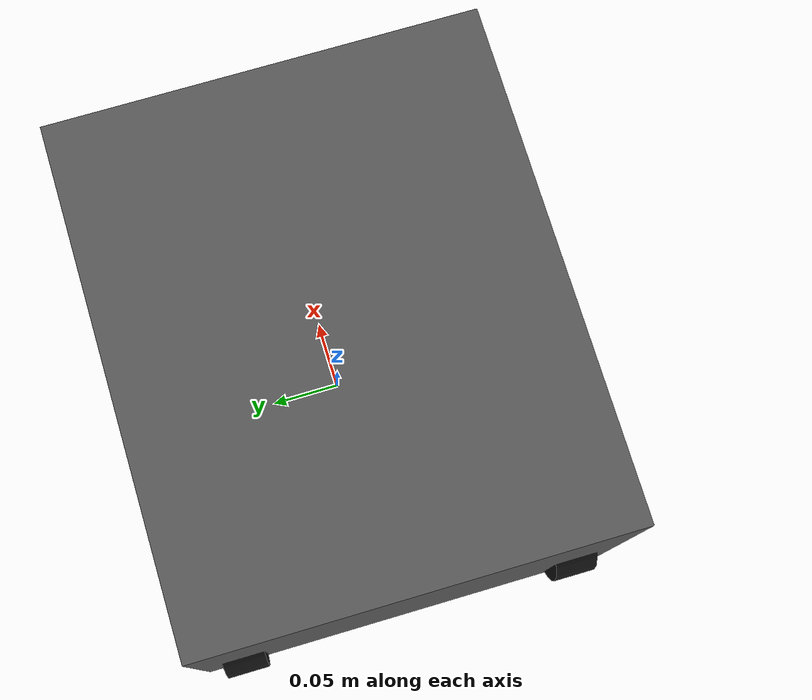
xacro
<?xml version="1.0"?>
<robot xmlns:xacro="http://www.ros.org/wiki/xacro" name="pet_rover">

  <!-- Main body dimensions (meters) -->
  <xacro:property name="base_length" value="0.36"/>
  <xacro:property name="base_width" value="0.30"/>
  <xacro:property name="base_height" value="0.20"/>
  <xacro:property name="base_mass" value="12.0"/>

  <!-- Wheel assumptions for visualization -->
  <xacro:property name="wheel_radius" value="0.05"/>
  <xacro:property name="wheel_width" value="0.03"/>
  <xacro:property name="wheel_mass" value="0.35"/>
  <xacro:property name="wheel_x" value="0.14"/>
  <xacro:property name="wheel_y" value="0.12"/>
  <xacro:property name="wheel_z" value="${-base_height/2.0 + wheel_radius}"/>

  <!-- Core links -->
  <link name="base_footprint"/>

  <link name="base_link">
    <visual>
      <origin xyz="0 0 0" rpy="0 0 0"/>
      <geometry>
        <box size="${base_length} ${base_width} ${base_height}"/>
      </geometry>
      <material name="gray">
        <color rgba="0.35 0.35 0.35 1.0"/>
      </material>
    </visual>
    <collision>
      <origin xyz="0 0 0" rpy="0 0 0"/>
      <geometry>
        <box size="${base_length} ${base_width} ${base_height}"/>
      </geometry>
    </collision>
    <inertial>
      <origin xyz="0 0 0" rpy="0 0 0"/>
      <mass value="${base_mass}"/>
      <inertia
        ixx="${(1.0/12.0) * base_mass * (base_width*base_width + base_height*base_height)}"
        ixy="0.0"
        ixz="0.0"
        iyy="${(1.0/12.0) * base_mass * (base_length*base_length + base_height*base_height)}"
        iyz="0.0"
        izz="${(1.0/12.0) * base_mass * (base_length*base_length + base_width*base_width)}"/>
    </inertial>
  </link>

  <!-- Ground frame to body-center frame -->
  <joint name="base_footprint_to_base_link" type="fixed">
    <parent link="base_footprint"/>
    <child link="base_link"/>
    <origin xyz="0 0 ${base_height/2.0}" rpy="0 0 0"/>
  </joint>

  <!-- Sensor frames (z values relative to base_link center) -->
  <link name="laser"/>
  <joint name="base_link_to_laser" type="fixed">
    <parent link="base_link"/>
    <child link="laser"/>
    <origin xyz="0 0 0.15" rpy="3.14159 0 0"/>
  </joint>

  <link name="camera_link"/>
  <joint name="base_link_to_camera_link" type="fixed">
    <parent link="base_link"/>
    <child link="camera_link"/>
    <origin xyz="0.1 0 0.09" rpy="0 0 0"/>
  </joint>

  <link name="ultrasonic_front_left_link"/>
  <joint name="base_link_to_ultrasonic_front_left" type="fixed">
    <parent link="base_link"/>
    <child link="ultrasonic_front_left_link"/>
    <origin xyz="0.1 0.1 0.02" rpy="0 0 0.3"/>
  </joint>

  <link name="ultrasonic_front_right_link"/>
  <joint name="base_link_to_ultrasonic_front_right" type="fixed">
    <parent link="base_link"/>
    <child link="ultrasonic_front_right_link"/>
    <origin xyz="0.1 -0.1 0.02" rpy="0 0 -0.3"/>
  </joint>

  <link name="ultrasonic_back_center_link"/>
  <joint name="base_link_to_ultrasonic_back_center" type="fixed">
    <parent link="base_link"/>
    <child link="ultrasonic_back_center_link"/>
    <origin xyz="-0.1 0 0.02" rpy="0 0 3.14159"/>
  </joint>

  <!-- Omnidirectional wheel placeholders (visual + inertial + continuous joints) -->
  <link name="wheel_front_left">
    <visual>
      <origin xyz="0 0 0" rpy="1.57079632679 0 0"/>
      <geometry>
        <cylinder radius="${wheel_radius}" length="${wheel_width}"/>
      </geometry>
      <material name="black">
        <color rgba="0.1 0.1 0.1 1.0"/>
      </material>
    </visual>
    <collision>
      <origin xyz="0 0 0" rpy="1.57079632679 0 0"/>
      <geometry>
        <cylinder radius="${wheel_radius}" length="${wheel_width}"/>
      </geometry>
    </collision>
    <inertial>
      <origin xyz="0 0 0" rpy="0 0 0"/>
      <mass value="${wheel_mass}"/>
      <inertia
        ixx="${(1.0/12.0) * wheel_mass * (3*wheel_radius*wheel_radius + wheel_width*wheel_width)}"
        ixy="0.0"
        ixz="0.0"
        iyy="${0.5 * wheel_mass * wheel_radius*wheel_radius}"
        iyz="0.0"
        izz="${(1.0/12.0) * wheel_mass * (3*wheel_radius*wheel_radius + wheel_width*wheel_width)}"/>
    </inertial>
  </link>

  <link name="wheel_front_right">
    <visual>
      <origin xyz="0 0 0" rpy="1.57079632679 0 0"/>
      <geometry><cylinder radius="${wheel_radius}" length="${wheel_width}"/></geometry>
      <material name="black"><color rgba="0.1 0.1 0.1 1.0"/></material>
    </visual>
    <collision>
      <origin xyz="0 0 0" rpy="1.57079632679 0 0"/>
      <geometry><cylinder radius="${wheel_radius}" length="${wheel_width}"/></geometry>
    </collision>
    <inertial>
      <origin xyz="0 0 0" rpy="0 0 0"/>
      <mass value="${wheel_mass}"/>
      <inertia
        ixx="${(1.0/12.0) * wheel_mass * (3*wheel_radius*wheel_radius + wheel_width*wheel_width)}"
        ixy="0.0" ixz="0.0"
        iyy="${0.5 * wheel_mass * wheel_radius*wheel_radius}"
        iyz="0.0"
        izz="${(1.0/12.0) * wheel_mass * (3*wheel_radius*wheel_radius + wheel_width*wheel_width)}"/>
    </inertial>
  </link>

  <link name="wheel_back_left">
    <visual>
      <origin xyz="0 0 0" rpy="1.57079632679 0 0"/>
      <geometry><cylinder radius="${wheel_radius}" length="${wheel_width}"/></geometry>
      <material name="black"><color rgba="0.1 0.1 0.1 1.0"/></material>
    </visual>
    <collision>
      <origin xyz="0 0 0" rpy="1.57079632679 0 0"/>
      <geometry><cylinder radius="${wheel_radius}" length="${wheel_width}"/></geometry>
    </collision>
    <inertial>
      <origin xyz="0 0 0" rpy="0 0 0"/>
      <mass value="${wheel_mass}"/>
      <inertia
        ixx="${(1.0/12.0) * wheel_mass * (3*wheel_radius*wheel_radius + wheel_width*wheel_width)}"
        ixy="0.0" ixz="0.0"
        iyy="${0.5 * wheel_mass * wheel_radius*wheel_radius}"
        iyz="0.0"
        izz="${(1.0/12.0) * wheel_mass * (3*wheel_radius*wheel_radius + wheel_width*wheel_width)}"/>
    </inertial>
  </link>

  <link name="wheel_back_right">
    <visual>
      <origin xyz="0 0 0" rpy="1.57079632679 0 0"/>
      <geometry><cylinder radius="${wheel_radius}" length="${wheel_width}"/></geometry>
      <material name="black"><color rgba="0.1 0.1 0.1 1.0"/></material>
    </visual>
    <collision>
      <origin xyz="0 0 0" rpy="1.57079632679 0 0"/>
      <geometry><cylinder radius="${wheel_radius}" length="${wheel_width}"/></geometry>
    </collision>
    <inertial>
      <origin xyz="0 0 0" rpy="0 0 0"/>
      <mass value="${wheel_mass}"/>
      <inertia
        ixx="${(1.0/12.0) * wheel_mass * (3*wheel_radius*wheel_radius + wheel_width*wheel_width)}"
        ixy="0.0" ixz="0.0"
        iyy="${0.5 * wheel_mass * wheel_radius*wheel_radius}"
        iyz="0.0"
        izz="${(1.0/12.0) * wheel_mass * (3*wheel_radius*wheel_radius + wheel_width*wheel_width)}"/>
    </inertial>
  </link>

  <!-- Continuous wheel joints (visualization placeholder for omnidirectional base) -->
  <joint name="joint_wheel_front_left" type="continuous">
    <parent link="base_link"/>
    <child link="wheel_front_left"/>
    <origin xyz="${wheel_x} ${wheel_y} ${wheel_z}" rpy="0 0 0"/>
    <axis xyz="0 1 0"/>
  </joint>

  <joint name="joint_wheel_front_right" type="continuous">
    <parent link="base_link"/>
    <child link="wheel_front_right"/>
    <origin xyz="${wheel_x} ${-wheel_y} ${wheel_z}" rpy="0 0 0"/>
    <axis xyz="0 1 0"/>
  </joint>

  <joint name="joint_wheel_back_left" type="continuous">
    <parent link="base_link"/>
    <child link="wheel_back_left"/>
    <origin xyz="${-wheel_x} ${wheel_y} ${wheel_z}" rpy="0 0 0"/>
    <axis xyz="0 1 0"/>
  </joint>

  <joint name="joint_wheel_back_right" type="continuous">
    <parent link="base_link"/>
    <child link="wheel_back_right"/>
    <origin xyz="${-wheel_x} ${-wheel_y} ${wheel_z}" rpy="0 0 0"/>
    <axis xyz="0 1 0"/>
  </joint>
</robot>
